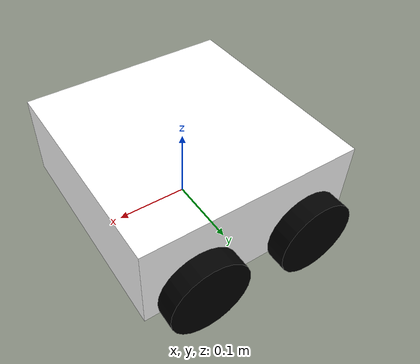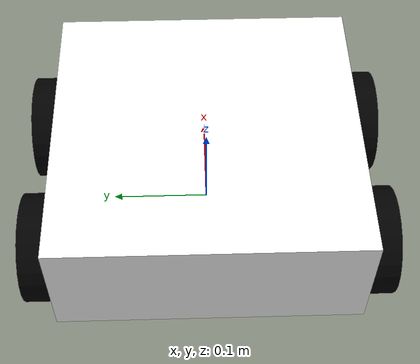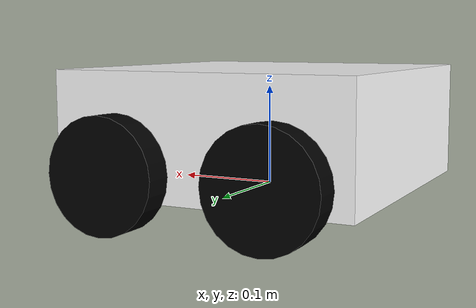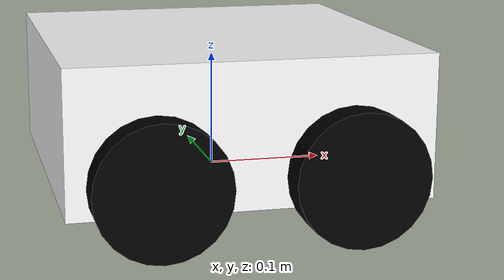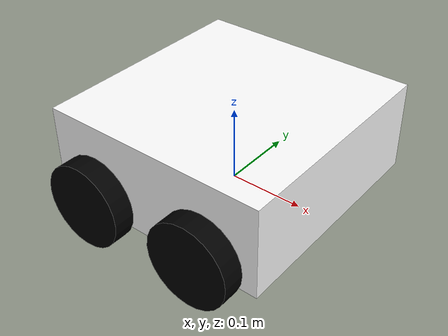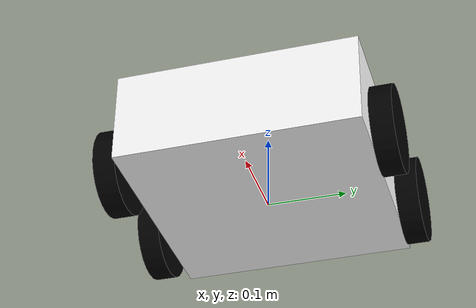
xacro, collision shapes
<?xml version="1.0"?>

<robot xmlns:xacro="http://www.ros.org/wiki/xacro"
 	xmlns:sensor="http://playerstage.sourceforge.net/gazebo/xmlschema/#sensor"
    	xmlns:controller="http://playerstage.sourceforge.net/gazebo/xmlschema/#controller"
    	xmlns:interface="http://playerstage.sourceforge.net/gazebo/xmlschema/#interface"
	name="agrovexr_xacro">

	<xacro:property name="length_wheel" value="0.028" />
  <xacro:property name="radius_wheel" value="0.055" />
  <xacro:macro name="default_inertial" params="mass ixx iyy izz ixy iyz ixz">
               <inertial>
                       <mass value="${mass}" />
                       <inertia ixx="${ixx}" ixy="${ixy}" ixz="${ixz}"
                                iyy="${iyy}" iyz="${iyz}"
                                izz="${izz}" />
               </inertial>
	</xacro:macro>

  <xacro:include filename="$(find agrovex_description)/urdf/agrovex.gazebo" />

	<link name="base_link">
   		<visual>
			<geometry>
      				<mesh filename="package://agrovex_description/meshes/chasis_vex.dae" scale="1 1 1"	/>
     			</geometry>
			<origin	rpy="0 0 1.570796"	xyz="0 0 0.05"	/>
			<material name="white">
				<color rgba="1 1 1 1"/>
			</material>
   		</visual>
		<collision>
			<geometry>
       				<box size="0.3 0.305 0.12"/>
			</geometry>
      <origin rpy="0 0 0"  xyz="0 0 0.06"  />
		</collision>
		<xacro:default_inertial mass="2.09216" ixx="2.304079989" iyy="3.210227493" izz="1.513832891" ixy="0.000201267" iyz="0.000001756" ixz="-0.006896907"   />
 	</link>

 	<link name="wheel_1">
   		<visual>
     			<geometry>
       				<mesh filename="package://agrovex_description/meshes/rueda1_vex.dae" scale="1 1 1"	/>
     			</geometry>
			<origin	rpy="0 0 -1.570796"	xyz="0.02 -0.038 -0.024"	/>
   			<material name="black">
				<color rgba="0 0 0 1"/>
			</material>
		</visual>
		<collision>
			<geometry>
       				<cylinder length="${length_wheel}" radius="${radius_wheel}"/>
			</geometry>
      <origin rpy="0 -1.570796 0" xyz="0.02 0 0"  />
		</collision>
		<xacro:default_inertial mass="0.1061929" ixx="0.00917256595" iyy="0.009174216667" izz="0.01764646301" ixy="0.00000008023" iyz="0.00000003539" ixz="-0.00000006107"/>
 	</link>

 	<link name="wheel_2">
   		<visual>
     			<geometry>
       				<mesh filename="package://agrovex_description/meshes/rueda2_vex.dae" scale="1 1 1" />
     			</geometry>
			    <origin  rpy="0 0 -1.570796" xyz="0.02 -0.038 -0.024"  />
   			<material name="black"/>
   		</visual>
		<collision>
			<geometry>
       				<cylinder length="${length_wheel}" radius="${radius_wheel}"/>
			</geometry>
           <origin rpy="0 -1.570796 0" xyz="0.02 0 0"  />
		</collision>
		<xacro:default_inertial mass="0.1061929" ixx="0.00917256595" iyy="0.009174216667" izz="0.01764646301" ixy="0.00000008023" iyz="0.00000003539" ixz="-0.00000006107"/>

 	</link>

 	<link name="wheel_3">
   		<visual>
     			<geometry>
       				<mesh filename="package://agrovex_description/meshes/rueda3_vex.dae" scale="1 1 1" />
     			</geometry>
    			<origin  rpy="0 0 -1.570796" xyz="-0.013 -0.038 -0.024" />
   			<material name="black"/>
   		</visual>
		<collision>
			<geometry>
       				<cylinder length="${length_wheel}" radius="${radius_wheel}"/>
			</geometry>
           <origin rpy="0 1.570796 0" xyz="-0.02 0 0"  />
		</collision>
		<xacro:default_inertial mass="0.1061929" ixx="0.00917256595" iyy="0.009174216667" izz="0.01764646301" ixy="0.00000008023" iyz="0.00000003539" ixz="-0.00000006107"/>
 	</link>

 	<link name="wheel_4">
   		<visual>
     			<geometry>
       				<mesh filename="package://agrovex_description/meshes/rueda4_vex.dae" scale="1 1 1" />
     			</geometry>
			  <origin  rpy="0 0 -1.570796" xyz="-0.013 -0.038 -0.024" />
   			<material name="black"/>
   		</visual>
		<collision>
			<geometry>
       				<cylinder length="${length_wheel}" radius="${radius_wheel}"/>
			</geometry>
           <origin rpy="0 1.570796 0" xyz="-0.02 0 0"  />
		</collision>
		<xacro:default_inertial mass="0.1061929" ixx="0.00917256595" iyy="0.009174216667" izz="0.01764646301" ixy="0.00000008023" iyz="0.00000003539" ixz="-0.00000006107"/>

 	</link>

 <joint name="base_to_wheel1" type="continuous">
      <parent link="base_link"  />
      <child  link="wheel_1"  />
      <origin rpy="0 0 -1.570796"   xyz="0.07925 -0.151 0.027"  />
      <axis xyz="1 0 0" />
 </joint>

 <joint name="base_to_wheel2" type="continuous">
      <parent link="base_link"  />
      <child  link="wheel_2"  />
      <origin rpy="0 0 -1.570796"   xyz="-0.07925 -0.151 0.027" />
      <axis xyz="1 0 0" />
</joint>

 <joint name="base_to_wheel3" type="continuous">
      <parent link="base_link"  />
      <child  link="wheel_3"  />
      <origin rpy="0 0 -1.570796"   xyz="-0.07925 0.151 0.027"  />
      <axis xyz="1 0 0" />
 </joint>

 <joint name="base_to_wheel4" type="continuous">
      <parent link="base_link"  />
      <child  link="wheel_4"  />
      <origin rpy="0 0 -1.570796" xyz="0.07925 0.151 0.027" />
      <axis xyz="1 0 0" />
 </joint>

</robot>
